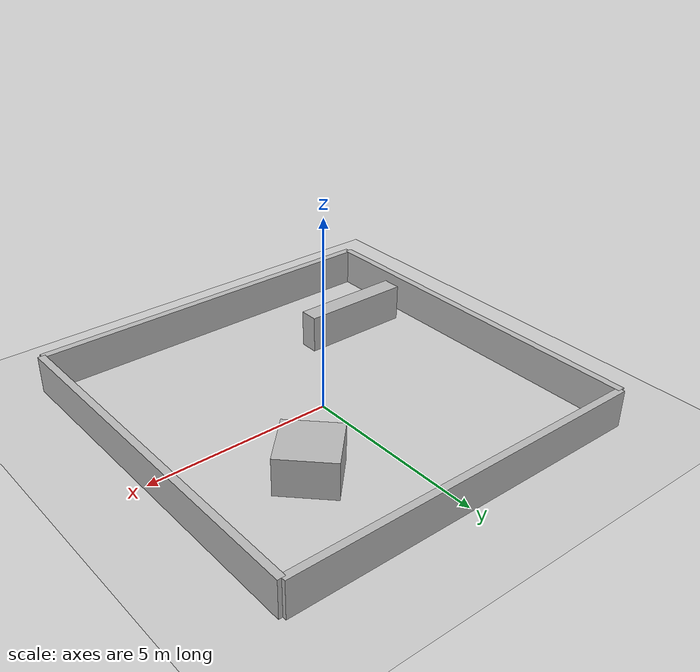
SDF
<?xml version="1.0" ?>
<sdf version="1.6">
  <world name="lab_world">

    <!-- Include basic environment models -->
    <include>
      <uri>model://ground_plane</uri>
    </include>
    <include>
      <uri>model://sun</uri>
    </include>

    <!-- Boundary Walls to create a 10x10 meter room -->
    <model name="wall_north">
      <static>true</static>
      <link name="link">
        <pose>0 5 0.5 0 0 0</pose>
        <collision name="collision">
          <geometry><box><size>10 0.2 1</size></box></geometry>
        </collision>
        <visual name="visual">
          <geometry><box><size>10 0.2 1</size></box></geometry>
        </visual>
      </link>
    </model>

    <model name="wall_south">
      <static>true</static>
      <link name="link">
        <pose>0 -5 0.5 0 0 0</pose>
        <collision name="collision">
          <geometry><box><size>10 0.2 1</size></box></geometry>
        </collision>
        <visual name="visual">
          <geometry><box><size>10 0.2 1</size></box></geometry>
        </visual>
      </link>
    </model>

    <model name="wall_east">
      <static>true</static>
      <link name="link">
        <pose>5 0 0.5 0 0 1.5707</pose> <!-- 1.5707 radians = 90 degrees -->
        <collision name="collision">
          <geometry><box><size>10 0.2 1</size></box></geometry>
        </collision>
        <visual name="visual">
          <geometry><box><size>10 0.2 1</size></box></geometry>
        </visual>
      </link>
    </model>

    <model name="wall_west">
      <static>true</static>
      <link name="link">
        <pose>-5 0 0.5 0 0 1.5707</pose> <!-- 1.5707 radians = 90 degrees -->
        <collision name="collision">
          <geometry><box><size>10 0.2 1</size></box></geometry>
        </collision>
        <visual name="visual">
          <geometry><box><size>10 0.2 1</size></box></geometry>
        </visual>
      </link>
    </model>

    <!-- Internal Obstacles -->
    <model name="obstacle_1">
      <static>true</static>
      <link name="link">
        <pose>2 2 0.5 0 0 0.785</pose> <!-- Rotated 45 degrees -->
        <collision name="collision">
          <geometry><box><size>1.5 1.5 1</size></box></geometry>
        </collision>
        <visual name="visual">
          <geometry><box><size>1.5 1.5 1</size></box></geometry>
        </visual>
      </link>
    </model>

    <model name="obstacle_2">
      <static>true</static>
      <link name="link">
        <pose>-3 -2.5 0.5 0 0 0</pose>
        <collision name="collision">
          <geometry><box><size>3 0.5 1</size></box></geometry>
        </collision>
        <visual name="visual">
          <geometry><box><size>3 0.5 1</size></box></geometry>
        </visual>
      </link>
    </model>

  </world>
</sdf>
